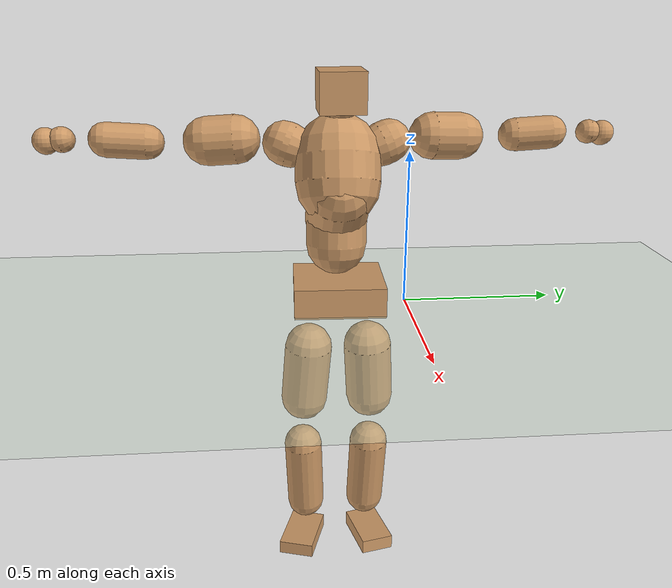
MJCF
<mujoco model="humanoid">
  <compiler coordinate="local" angle="radian"/>
  <default>
    <joint damping="0.0" armature="0.01" stiffness="0.0" limited="true"/>
    <geom conaffinity="1" condim="3" contype="7" margin="0.001" rgba="0.8 0.6 .4 1"/>
  </default>
  <asset>
    <texture type="skybox" builtin="gradient" rgb1=".4 .5 .6" rgb2="0 0 0" width="100" height="100"/>
    <texture builtin="flat" height="1278" mark="cross" markrgb="1 1 1" name="texgeom" random="0.01" rgb1="0.8 0.6 0.4" rgb2="0.8 0.6 0.4" type="cube" width="127"/>
    <texture builtin="checker" height="100" name="texplane" rgb1="0 0 0" rgb2="0.8 0.8 0.8" type="2d" width="100"/>
    <material name="MatPlane" reflectance="0.5" shininess="1" specular="1" texrepeat="60 60" texture="texplane"/>
    <material name="geom" texture="texgeom" texuniform="true"/>
  </asset>
  <worldbody>
    <light cutoff="100" diffuse="1 1 1" dir="-0 0 -1.3" directional="true" exponent="1" pos="0 0 1.3" specular=".1 .1 .1"/>
    <geom conaffinity="1" condim="3" name="floor" pos="0 0 0" rgba="0.8 0.9 0.8 1" size="100 100 .2" type="plane" material="MatPlane"/>
    <body name="Pelvis" pos="0.0039 -0.2265 0.0571">
      <freejoint name="Pelvis"/>
      <geom type="box" contype="1" conaffinity="1" density="5359.375573" pos="-0.0059 0.0002 -0.0154" size="0.1383 0.15 0.0499" quat="0.9999 0.0000 0.0000 -0.0133" name="Pelvis"/>
      <body name="L_Hip" pos="0.0034 0.0971 -0.1082">
        <joint name="L_Hip_x" type="hinge" pos="0 0 0" axis="1 0 0" stiffness="1600" damping="160" armature="0.02" range="-180.0000 180.0000"/>
        <joint name="L_Hip_y" type="hinge" pos="0 0 0" axis="0 1 0" stiffness="1600" damping="160" armature="0.02" range="-180.0000 180.0000"/>
        <joint name="L_Hip_z" type="hinge" pos="0 0 0" axis="0 0 1" stiffness="1600" damping="160" armature="0.02" range="-180.0000 180.0000"/>
        <geom type="capsule" contype="1" conaffinity="1" density="2040.816327" size="0.0822" fromto="-0.0088 0.0065 -0.1117 -0.0248 0.0185 -0.3160" name="L_Hip"/>
        <body name="L_Knee" pos="-0.0335 0.0251 -0.4277">
          <joint name="L_Knee_x" type="hinge" pos="0 0 0" axis="1 0 0" stiffness="1600" damping="160" armature="0.02" range="-180.0000 180.0000"/>
          <joint name="L_Knee_y" type="hinge" pos="0 0 0" axis="0 1 0" stiffness="1600" damping="160" armature="0.02" range="-180.0000 180.0000"/>
          <joint name="L_Knee_z" type="hinge" pos="0 0 0" axis="0 0 1" stiffness="1600" damping="160" armature="0.02" range="-180.0000 180.0000"/>
          <geom type="capsule" contype="1" conaffinity="1" density="1234.567901" size="0.0692" fromto="-0.0130 -0.0025 -0.0983 -0.0488 -0.0094 -0.3698" name="L_Knee"/>
          <body name="L_Ankle" pos="-0.0618 -0.0119 -0.4681">
            <joint name="L_Ankle_x" type="hinge" pos="0 0 0" axis="1 0 0" stiffness="1600" damping="160" armature="0.02" range="-180.0000 180.0000"/>
            <joint name="L_Ankle_y" type="hinge" pos="0 0 0" axis="0 1 0" stiffness="1600" damping="160" armature="0.02" range="-180.0000 180.0000"/>
            <joint name="L_Ankle_z" type="hinge" pos="0 0 0" axis="0 0 1" stiffness="1600" damping="160" armature="0.02" range="-180.0000 180.0000"/>
            <geom type="box" contype="1" conaffinity="1" density="999.99998" pos="0.0669 0.0160 -0.0340" size="0.0986 0.0592 0.0266" quat="0.9931 0.0000 0.0000 0.1169" name="L_Ankle"/>
            <body name="L_Toe" pos="0.1337 0.0319 -0.068">
              <joint name="L_Toe_x" type="hinge" pos="0 0 0" axis="1 0 0" stiffness="1000" damping="100" armature="0.02" range="-180.0000 180.0000"/>
              <joint name="L_Toe_y" type="hinge" pos="0 0 0" axis="0 1 0" stiffness="1000" damping="100" armature="0.02" range="-180.0000 180.0000"/>
              <joint name="L_Toe_z" type="hinge" pos="0 0 0" axis="0 0 1" stiffness="1000" damping="100" armature="0.02" range="-180.0000 180.0000"/>
              <geom type="box" contype="1" conaffinity="1" density="8254558.966031" pos="0.0000 0.0000 0.0345" size="0.0012 0.0029 0.0014" quat="0.9925 0.0000 0.0000 0.1222" name="L_Toe"/>
            </body>
          </body>
        </body>
      </body>
      <body name="R_Hip" pos="0.0072 -0.0933 -0.1094">
        <joint name="R_Hip_x" type="hinge" pos="0 0 0" axis="1 0 0" stiffness="1600" damping="160" armature="0.02" range="-180.0000 180.0000"/>
        <joint name="R_Hip_y" type="hinge" pos="0 0 0" axis="0 1 0" stiffness="1600" damping="160" armature="0.02" range="-180.0000 180.0000"/>
        <joint name="R_Hip_z" type="hinge" pos="0 0 0" axis="0 0 1" stiffness="1600" damping="160" armature="0.02" range="-180.0000 180.0000"/>
        <geom type="capsule" contype="1" conaffinity="1" density="2040.816327" size="0.0812" fromto="-0.0090 -0.0091 -0.1105 -0.0259 -0.0261 -0.3170" name="R_Hip"/>
        <body name="R_Knee" pos="-0.0349 -0.0352 -0.4274">
          <joint name="R_Knee_x" type="hinge" pos="0 0 0" axis="1 0 0" stiffness="1600" damping="160" armature="0.02" range="-180.0000 180.0000"/>
          <joint name="R_Knee_y" type="hinge" pos="0 0 0" axis="0 1 0" stiffness="1600" damping="160" armature="0.02" range="-180.0000 180.0000"/>
          <joint name="R_Knee_z" type="hinge" pos="0 0 0" axis="0 0 1" stiffness="1600" damping="160" armature="0.02" range="-180.0000 180.0000"/>
          <geom type="capsule" contype="1" conaffinity="1" density="1234.567901" size="0.0687" fromto="-0.0129 0.0030 -0.0978 -0.0490 0.0115 -0.3725" name="R_Knee"/>
          <body name="R_Ankle" pos="-0.0619 0.0145 -0.4703">
            <joint name="R_Ankle_x" type="hinge" pos="0 0 0" axis="1 0 0" stiffness="1600" damping="160" armature="0.02" range="-180.0000 180.0000"/>
            <joint name="R_Ankle_y" type="hinge" pos="0 0 0" axis="0 1 0" stiffness="1600" damping="160" armature="0.02" range="-180.0000 180.0000"/>
            <joint name="R_Ankle_z" type="hinge" pos="0 0 0" axis="0 0 1" stiffness="1600" damping="160" armature="0.02" range="-180.0000 180.0000"/>
            <geom type="box" contype="1" conaffinity="1" density="999.999946" pos="0.0701 -0.0215 -0.0286" size="0.0994 0.0628 0.0251" quat="0.9890 0.0000 0.0000 -0.1479" name="R_Ankle"/>
            <body name="R_Toe" pos="0.1403 -0.0429 -0.0571">
              <joint name="R_Toe_x" type="hinge" pos="0 0 0" axis="1 0 0" stiffness="1000" damping="100" armature="0.02" range="-180.0000 180.0000"/>
              <joint name="R_Toe_y" type="hinge" pos="0 0 0" axis="0 1 0" stiffness="1000" damping="100" armature="0.02" range="-180.0000 180.0000"/>
              <joint name="R_Toe_z" type="hinge" pos="0 0 0" axis="0 0 1" stiffness="1000" damping="100" armature="0.02" range="-180.0000 180.0000"/>
              <geom type="box" contype="1" conaffinity="1" density="7326422.503188" pos="0.0000 0.0000 0.0331" size="0.0012 0.003 0.0015" quat="0.9902 0.0000 0.0000 -0.1395" name="R_Toe"/>
            </body>
          </body>
        </body>
      </body>
      <body name="Torso" pos="-0.046 -0.0028 0.1249">
        <joint name="Torso_x" type="hinge" pos="0 0 0" axis="1 0 0" stiffness="2000" damping="200" armature="0.02" range="-180.0000 180.0000"/>
        <joint name="Torso_y" type="hinge" pos="0 0 0" axis="0 1 0" stiffness="2000" damping="200" armature="0.02" range="-180.0000 180.0000"/>
        <joint name="Torso_z" type="hinge" pos="0 0 0" axis="0 0 1" stiffness="2000" damping="200" armature="0.02" range="-180.0000 180.0000"/>
        <geom type="capsule" contype="1" conaffinity="1" density="2040.816327" size="0.1011" fromto="-0.0070 0.0012 0.1009 -0.0008 0.0001 0.0110" name="Torso"/>
        <body name="Spine" pos="-0.0078 0.0013 0.1119">
          <joint name="Spine_x" type="hinge" pos="0 0 0" axis="1 0 0" stiffness="2000" damping="200" armature="0.02" range="-180.0000 180.0000"/>
          <joint name="Spine_y" type="hinge" pos="0 0 0" axis="0 1 0" stiffness="2000" damping="200" armature="0.02" range="-180.0000 180.0000"/>
          <joint name="Spine_z" type="hinge" pos="0 0 0" axis="0 0 1" stiffness="2000" damping="200" armature="0.02" range="-180.0000 180.0000"/>
          <geom type="capsule" contype="1" conaffinity="1" density="2040.816327" size="0.1034" fromto="0.0683 0.0029 0.0775 -0.0200 -0.0008 -0.0227" name="Spine"/>
          <body name="Chest" pos="0.0484 0.002 0.0549">
            <joint name="Chest_x" type="hinge" pos="0 0 0" axis="1 0 0" stiffness="2000" damping="200" armature="0.02" range="-180.0000 180.0000"/>
            <joint name="Chest_y" type="hinge" pos="0 0 0" axis="0 1 0" stiffness="2000" damping="200" armature="0.02" range="-180.0000 180.0000"/>
            <joint name="Chest_z" type="hinge" pos="0 0 0" axis="0 0 1" stiffness="2000" damping="200" armature="0.02" range="-180.0000 180.0000"/>
            <geom type="capsule" contype="1" conaffinity="1" density="2040.816327" size="0.1389" fromto="-0.0458 0.0013 0.1312 -0.0183 0.0005 0.0523" name="Chest"/>
            <body name="Neck" pos="-0.0722 0.0051 0.2546">
              <joint name="Neck_x" type="hinge" pos="0 0 0" axis="1 0 0" stiffness="1000" damping="100" armature="0.02" range="-180.0000 180.0000"/>
              <joint name="Neck_y" type="hinge" pos="0 0 0" axis="0 1 0" stiffness="1000" damping="100" armature="0.02" range="-180.0000 180.0000"/>
              <joint name="Neck_z" type="hinge" pos="0 0 0" axis="0 0 1" stiffness="1000" damping="100" armature="0.02" range="-180.0000 180.0000"/>
              <geom type="capsule" contype="1" conaffinity="1" density="1000" size="0.0514" fromto="0.0377 -0.0011 0.0349 0.0239 -0.0007 0.0221" name="Neck"/>
              <body name="Head" pos="0.0616 -0.0018 0.0571">
                <joint name="Head_x" type="hinge" pos="0 0 0" axis="1 0 0" stiffness="1000" damping="100" armature="0.02" range="-180.0000 180.0000"/>
                <joint name="Head_y" type="hinge" pos="0 0 0" axis="0 1 0" stiffness="1000" damping="100" armature="0.02" range="-180.0000 180.0000"/>
                <joint name="Head_z" type="hinge" pos="0 0 0" axis="0 0 1" stiffness="1000" damping="100" armature="0.02" range="-180.0000 180.0000"/>
                <geom type="box" contype="1" conaffinity="1" density="2250.0002" pos="0.0318 0.0001 0.0295" size="0.0888 0.0709 0.0612" quat="1.0000 0.0000 0.0000 0.0019" name="Head"/>
              </body>
            </body>
            <body name="L_Thorax" pos="-0.0564 0.1036 0.1494">
              <joint name="L_Thorax_x" type="hinge" pos="0 0 0" axis="1 0 0" stiffness="1000" damping="100" armature="0.02" range="-180.0000 180.0000"/>
              <joint name="L_Thorax_y" type="hinge" pos="0 0 0" axis="0 1 0" stiffness="1000" damping="100" armature="0.02" range="-180.0000 180.0000"/>
              <joint name="L_Thorax_z" type="hinge" pos="0 0 0" axis="0 0 1" stiffness="1000" damping="100" armature="0.02" range="-180.0000 180.0000"/>
              <geom type="capsule" contype="1" conaffinity="1" density="1000" size="0.07" fromto="-0.0115 0.0643 0.0252 -0.0073 0.0406 0.0159" name="L_Thorax"/>
              <body name="L_Shoulder" pos="-0.0188 0.1049 0.041">
                <joint name="L_Shoulder_x" type="hinge" pos="0 0 0" axis="1 0 0" stiffness="1000" damping="100" armature="0.02" range="-720.0000 720.0000"/>
                <joint name="L_Shoulder_y" type="hinge" pos="0 0 0" axis="0 1 0" stiffness="1000" damping="100" armature="0.02" range="-720.0000 720.0000"/>
                <joint name="L_Shoulder_z" type="hinge" pos="0 0 0" axis="0 0 1" stiffness="1000" damping="100" armature="0.02" range="-720.0000 720.0000"/>
                <geom type="capsule" contype="1" conaffinity="1" density="1000" size="0.0753" fromto="-0.0145 0.1042 -0.0048 -0.0278 0.1998 -0.0093" name="L_Shoulder"/>
                <body name="L_Elbow" pos="-0.0424 0.304 -0.0141">
                  <joint name="L_Elbow_x" type="hinge" pos="0 0 0" axis="1 0 0" stiffness="1000" damping="100" armature="0.02" range="-720.0000 720.0000"/>
                  <joint name="L_Elbow_y" type="hinge" pos="0 0 0" axis="0 1 0" stiffness="1000" damping="100" armature="0.02" range="-720.0000 720.0000"/>
                  <joint name="L_Elbow_z" type="hinge" pos="0 0 0" axis="0 0 1" stiffness="1000" damping="100" armature="0.02" range="-720.0000 720.0000"/>
                  <geom type="capsule" contype="1" conaffinity="1" density="1000" size="0.0541" fromto="0.0014 0.0839 0.0049 0.0034 0.2006 0.0116" name="L_Elbow"/>
                  <body name="L_Wrist" pos="0.0048 0.2846 0.0165">
                    <joint name="L_Wrist_x" type="hinge" pos="0 0 0" axis="1 0 0" stiffness="600" damping="60" armature="0.02" range="-180.0000 180.0000"/>
                    <joint name="L_Wrist_y" type="hinge" pos="0 0 0" axis="0 1 0" stiffness="600" damping="60" armature="0.02" range="-180.0000 180.0000"/>
                    <joint name="L_Wrist_z" type="hinge" pos="0 0 0" axis="0 0 1" stiffness="600" damping="60" armature="0.02" range="-180.0000 180.0000"/>
                    <geom type="capsule" contype="1" conaffinity="1" density="1000" size="0.0389" fromto="-0.0080 0.0494 -0.0057 -0.0083 0.0513 -0.0059" name="L_Wrist"/>
                    <body name="L_Hand" pos="-0.0164 0.1007 -0.0116">
                      <joint name="L_Hand_x" type="hinge" pos="0 0 0" axis="1 0 0" stiffness="600" damping="60" armature="0.02" range="-180.0000 180.0000"/>
                      <joint name="L_Hand_y" type="hinge" pos="0 0 0" axis="0 1 0" stiffness="600" damping="60" armature="0.02" range="-180.0000 180.0000"/>
                      <joint name="L_Hand_z" type="hinge" pos="0 0 0" axis="0 0 1" stiffness="600" damping="60" armature="0.02" range="-180.0000 180.0000"/>
                      <geom type="sphere" contype="1" conaffinity="1" density="1000" size="0.0406" pos="0.0000 0.0000 0.0000" name="L_Hand"/>
                    </body>
                  </body>
                </body>
              </body>
            </body>
            <body name="R_Thorax" pos="-0.0637 -0.1033 0.1465">
              <joint name="R_Thorax_x" type="hinge" pos="0 0 0" axis="1 0 0" stiffness="1000" damping="100" armature="0.02" range="-180.0000 180.0000"/>
              <joint name="R_Thorax_y" type="hinge" pos="0 0 0" axis="0 1 0" stiffness="1000" damping="100" armature="0.02" range="-180.0000 180.0000"/>
              <joint name="R_Thorax_z" type="hinge" pos="0 0 0" axis="0 0 1" stiffness="1000" damping="100" armature="0.02" range="-180.0000 180.0000"/>
              <geom type="capsule" contype="1" conaffinity="1" density="1000" size="0.0704" fromto="-0.0104 -0.0650 0.0250 -0.0075 -0.0466 0.0179" name="R_Thorax"/>
              <body name="R_Shoulder" pos="-0.0179 -0.1116 0.0429">
                <joint name="R_Shoulder_x" type="hinge" pos="0 0 0" axis="1 0 0" stiffness="1000" damping="100" armature="0.02" range="-720.0000 720.0000"/>
                <joint name="R_Shoulder_y" type="hinge" pos="0 0 0" axis="0 1 0" stiffness="1000" damping="100" armature="0.02" range="-720.0000 720.0000"/>
                <joint name="R_Shoulder_z" type="hinge" pos="0 0 0" axis="0 0 1" stiffness="1000" damping="100" armature="0.02" range="-720.0000 720.0000"/>
                <geom type="capsule" contype="1" conaffinity="1" density="1000" size="0.0779" fromto="-0.0126 -0.1069 -0.0075 -0.0236 -0.1994 -0.0140" name="R_Shoulder"/>
                <body name="R_Elbow" pos="-0.0362 -0.3063 -0.0216">
                  <joint name="R_Elbow_x" type="hinge" pos="0 0 0" axis="1 0 0" stiffness="1000" damping="100" armature="0.02" range="-720.0000 720.0000"/>
                  <joint name="R_Elbow_y" type="hinge" pos="0 0 0" axis="0 1 0" stiffness="1000" damping="100" armature="0.02" range="-720.0000 720.0000"/>
                  <joint name="R_Elbow_z" type="hinge" pos="0 0 0" axis="0 0 1" stiffness="1000" damping="100" armature="0.02" range="-720.0000 720.0000"/>
                  <geom type="capsule" contype="1" conaffinity="1" density="1000" size="0.056" fromto="0.0014 -0.0858 0.0060 0.0035 -0.2137 0.0149" name="R_Elbow"/>
                  <body name="R_Wrist" pos="0.0049 -0.2995 0.0209">
                    <joint name="R_Wrist_x" type="hinge" pos="0 0 0" axis="1 0 0" stiffness="600" damping="60" armature="0.02" range="-180.0000 180.0000"/>
                    <joint name="R_Wrist_y" type="hinge" pos="0 0 0" axis="0 1 0" stiffness="600" damping="60" armature="0.02" range="-180.0000 180.0000"/>
                    <joint name="R_Wrist_z" type="hinge" pos="0 0 0" axis="0 0 1" stiffness="600" damping="60" armature="0.02" range="-180.0000 180.0000"/>
                    <geom type="capsule" contype="1" conaffinity="1" density="1000" size="0.041" fromto="-0.0070 -0.0516 -0.0046 -0.0073 -0.0535 -0.0048" name="R_Wrist"/>
                    <body name="R_Hand" pos="-0.0143 -0.1051 -0.0095">
                      <joint name="R_Hand_x" type="hinge" pos="0 0 0" axis="1 0 0" stiffness="600" damping="60" armature="0.02" range="-180.0000 180.0000"/>
                      <joint name="R_Hand_y" type="hinge" pos="0 0 0" axis="0 1 0" stiffness="600" damping="60" armature="0.02" range="-180.0000 180.0000"/>
                      <joint name="R_Hand_z" type="hinge" pos="0 0 0" axis="0 0 1" stiffness="600" damping="60" armature="0.02" range="-180.0000 180.0000"/>
                      <geom type="sphere" contype="1" conaffinity="1" density="1000" size="0.0424" pos="0.0000 0.0000 0.0000" name="R_Hand"/>
                    </body>
                  </body>
                </body>
              </body>
            </body>
          </body>
        </body>
      </body>
    </body>
  </worldbody>
  <actuator>
    <motor name="L_Hip_x" joint="L_Hip_x" gear="500"/>
    <motor name="L_Hip_y" joint="L_Hip_y" gear="500"/>
    <motor name="L_Hip_z" joint="L_Hip_z" gear="500"/>
    <motor name="L_Knee_x" joint="L_Knee_x" gear="500"/>
    <motor name="L_Knee_y" joint="L_Knee_y" gear="500"/>
    <motor name="L_Knee_z" joint="L_Knee_z" gear="500"/>
    <motor name="L_Ankle_x" joint="L_Ankle_x" gear="500"/>
    <motor name="L_Ankle_y" joint="L_Ankle_y" gear="500"/>
    <motor name="L_Ankle_z" joint="L_Ankle_z" gear="500"/>
    <motor name="L_Toe_x" joint="L_Toe_x" gear="500"/>
    <motor name="L_Toe_y" joint="L_Toe_y" gear="500"/>
    <motor name="L_Toe_z" joint="L_Toe_z" gear="500"/>
    <motor name="R_Hip_x" joint="R_Hip_x" gear="500"/>
    <motor name="R_Hip_y" joint="R_Hip_y" gear="500"/>
    <motor name="R_Hip_z" joint="R_Hip_z" gear="500"/>
    <motor name="R_Knee_x" joint="R_Knee_x" gear="500"/>
    <motor name="R_Knee_y" joint="R_Knee_y" gear="500"/>
    <motor name="R_Knee_z" joint="R_Knee_z" gear="500"/>
    <motor name="R_Ankle_x" joint="R_Ankle_x" gear="500"/>
    <motor name="R_Ankle_y" joint="R_Ankle_y" gear="500"/>
    <motor name="R_Ankle_z" joint="R_Ankle_z" gear="500"/>
    <motor name="R_Toe_x" joint="R_Toe_x" gear="500"/>
    <motor name="R_Toe_y" joint="R_Toe_y" gear="500"/>
    <motor name="R_Toe_z" joint="R_Toe_z" gear="500"/>
    <motor name="Torso_x" joint="Torso_x" gear="500"/>
    <motor name="Torso_y" joint="Torso_y" gear="500"/>
    <motor name="Torso_z" joint="Torso_z" gear="500"/>
    <motor name="Spine_x" joint="Spine_x" gear="500"/>
    <motor name="Spine_y" joint="Spine_y" gear="500"/>
    <motor name="Spine_z" joint="Spine_z" gear="500"/>
    <motor name="Chest_x" joint="Chest_x" gear="500"/>
    <motor name="Chest_y" joint="Chest_y" gear="500"/>
    <motor name="Chest_z" joint="Chest_z" gear="500"/>
    <motor name="Neck_x" joint="Neck_x" gear="500"/>
    <motor name="Neck_y" joint="Neck_y" gear="500"/>
    <motor name="Neck_z" joint="Neck_z" gear="500"/>
    <motor name="Head_x" joint="Head_x" gear="500"/>
    <motor name="Head_y" joint="Head_y" gear="500"/>
    <motor name="Head_z" joint="Head_z" gear="500"/>
    <motor name="L_Thorax_x" joint="L_Thorax_x" gear="500"/>
    <motor name="L_Thorax_y" joint="L_Thorax_y" gear="500"/>
    <motor name="L_Thorax_z" joint="L_Thorax_z" gear="500"/>
    <motor name="L_Shoulder_x" joint="L_Shoulder_x" gear="500"/>
    <motor name="L_Shoulder_y" joint="L_Shoulder_y" gear="500"/>
    <motor name="L_Shoulder_z" joint="L_Shoulder_z" gear="500"/>
    <motor name="L_Elbow_x" joint="L_Elbow_x" gear="500"/>
    <motor name="L_Elbow_y" joint="L_Elbow_y" gear="500"/>
    <motor name="L_Elbow_z" joint="L_Elbow_z" gear="500"/>
    <motor name="L_Wrist_x" joint="L_Wrist_x" gear="500"/>
    <motor name="L_Wrist_y" joint="L_Wrist_y" gear="500"/>
    <motor name="L_Wrist_z" joint="L_Wrist_z" gear="500"/>
    <motor name="L_Hand_x" joint="L_Hand_x" gear="500"/>
    <motor name="L_Hand_y" joint="L_Hand_y" gear="500"/>
    <motor name="L_Hand_z" joint="L_Hand_z" gear="500"/>
    <motor name="R_Thorax_x" joint="R_Thorax_x" gear="500"/>
    <motor name="R_Thorax_y" joint="R_Thorax_y" gear="500"/>
    <motor name="R_Thorax_z" joint="R_Thorax_z" gear="500"/>
    <motor name="R_Shoulder_x" joint="R_Shoulder_x" gear="500"/>
    <motor name="R_Shoulder_y" joint="R_Shoulder_y" gear="500"/>
    <motor name="R_Shoulder_z" joint="R_Shoulder_z" gear="500"/>
    <motor name="R_Elbow_x" joint="R_Elbow_x" gear="500"/>
    <motor name="R_Elbow_y" joint="R_Elbow_y" gear="500"/>
    <motor name="R_Elbow_z" joint="R_Elbow_z" gear="500"/>
    <motor name="R_Wrist_x" joint="R_Wrist_x" gear="500"/>
    <motor name="R_Wrist_y" joint="R_Wrist_y" gear="500"/>
    <motor name="R_Wrist_z" joint="R_Wrist_z" gear="500"/>
    <motor name="R_Hand_x" joint="R_Hand_x" gear="500"/>
    <motor name="R_Hand_y" joint="R_Hand_y" gear="500"/>
    <motor name="R_Hand_z" joint="R_Hand_z" gear="500"/>
  </actuator>
  <contact>
    <exclude body1="Torso" body2="Chest"/>
    <exclude body1="Head" body2="Chest"/>
    <exclude body1="R_Knee" body2="R_Toe"/>
    <exclude body1="R_Knee" body2="L_Ankle"/>
    <exclude body1="R_Knee" body2="L_Toe"/>
    <exclude body1="L_Knee" body2="L_Toe"/>
    <exclude body1="L_Knee" body2="R_Ankle"/>
    <exclude body1="L_Knee" body2="R_Toe"/>
    <exclude body1="L_Shoulder" body2="Chest"/>
    <exclude body1="R_Shoulder" body2="Chest"/>
  </contact>
  <sensor/>
  <size njmax="700" nconmax="700"/>
</mujoco>
